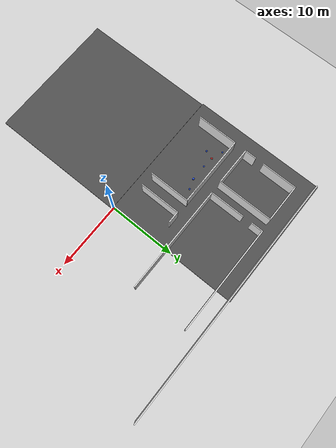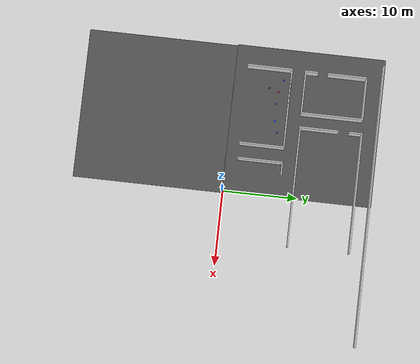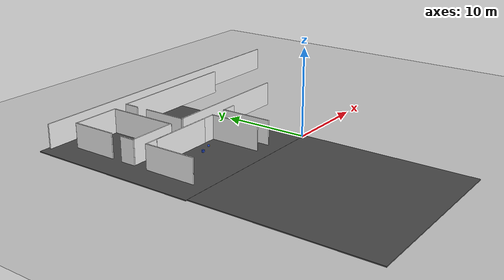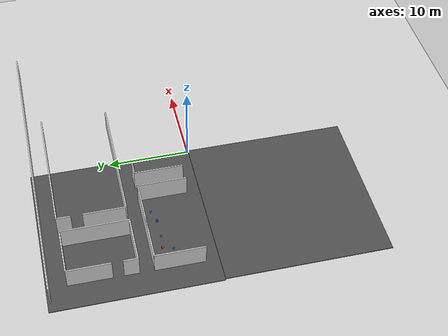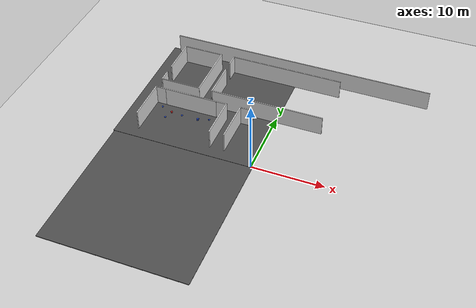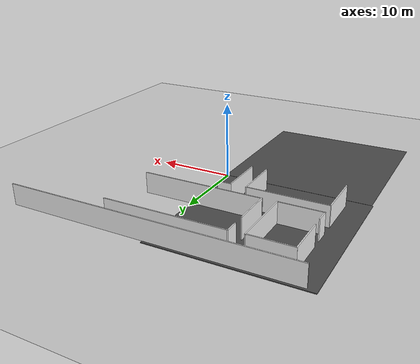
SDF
<sdf version="1.7">
 <world name="default">
  <model name="ground_plane">
   <static>1</static>
   <link name="link">
    <collision name="collision">
     <geometry><plane><normal>0 0 1</normal><size>100 100</size></plane></geometry>
     <surface><friction><ode><mu>100</mu><mu2>50</mu2></ode></friction></surface>
    </collision>
    <visual name="visual">
     <cast_shadows>0</cast_shadows>
     <geometry><plane><normal>0 0 1</normal><size>100 100</size></plane></geometry>
     <material>
      <script><uri>file://media/materials/scripts/gazebo.material</uri><name>Gazebo/Grey</name></script>
     </material>
    </visual>
    <velocity_decay><linear>0</linear><angular>0</angular></velocity_decay>
   </link>
  </model>
  <model name="asphalt_plane">
   <static>1</static>
   <link name="link">
    <collision name="collision"><geometry><box><size>20 20 0.1</size></box></geometry></collision>
    <visual name="visual">
     <cast_shadows>0</cast_shadows>
     <geometry><box><size>20 20 0.1</size></box></geometry>
     <material>
      <script>
       <uri>model://asphalt_plane/materials/scripts</uri>
       <uri>model://asphalt_plane/materials/textures</uri>
       <name>vrc/asphalt</name>
      </script>
     </material>
    </visual>
   </link>
   <pose>-9.73878 -10.1135 0 0 -0 0</pose>
  </model>
  <model name="asphalt_plane_0">
   <static>1</static>
   <link name="link">
    <collision name="collision"><geometry><box><size>20 20 0.1</size></box></geometry></collision>
    <visual name="visual">
     <cast_shadows>0</cast_shadows>
     <geometry><box><size>20 20 0.1</size></box></geometry>
     <material>
      <script>
       <uri>model://asphalt_plane/materials/scripts</uri>
       <uri>model://asphalt_plane/materials/textures</uri>
       <name>vrc/asphalt</name>
      </script>
     </material>
    </visual>
   </link>
   <pose>-9.90113 9.90141 0 0 -0 0</pose>
  </model>
  <model name="white_wall_outside">
   <link name="link">
    <inertial>
     <mass>1</mass>
     <inertia>
      <ixx>0.166667</ixx>
      <ixy>0</ixy>
      <ixz>0</ixz>
      <iyy>0.166667</iyy>
      <iyz>0</iyz>
      <izz>0.166667</izz>
     </inertia>
    </inertial>
    <visual name="visual">
     <geometry><box><size>37.6355 0.139088 2.78993</size></box></geometry>
     <material>
      <script><name>Gazebo/White</name><uri>file://media/materials/scripts/gazebo.material</uri></script>
      <shader type="vertex"><normal_map>__default__</normal_map></shader>
      <ambient>1 1 1 1</ambient>
      <diffuse>1 1 1 1</diffuse>
      <specular>0 0 0 1</specular>
      <emissive>0 0 0 1</emissive>
     </material>
    </visual>
    <collision name="collision">
     <geometry><box><size>37.6355 0.139088 2.78993</size></box></geometry>
     <surface>
      <friction>
       <ode><mu>1</mu><mu2>1</mu2><fdir1>0 0 0</fdir1><slip1>0</slip1><slip2>0</slip2></ode>
       <torsional>
        <coefficient>1</coefficient>
        <patch_radius>0</patch_radius>
        <surface_radius>0</surface_radius>
        <use_patch_radius>1</use_patch_radius>
        <ode><slip>0</slip></ode>
       </torsional>
      </friction>
      <bounce><restitution_coefficient>0</restitution_coefficient><threshold>1e+06</threshold></bounce>
      <contact>
       <collide_without_contact>0</collide_without_contact>
       <collide_without_contact_bitmask>1</collide_without_contact_bitmask>
       <collide_bitmask>1</collide_bitmask>
       <ode>
        <soft_cfm>0</soft_cfm>
        <soft_erp>0.2</soft_erp>
        <kp>1e+13</kp>
        <kd>1</kd>
        <max_vel>0.01</max_vel>
        <min_depth>0</min_depth>
       </ode>
       <bullet>
        <split_impulse>1</split_impulse>
        <split_impulse_penetration_threshold>-0.01</split_impulse_penetration_threshold>
        <soft_cfm>0</soft_cfm>
        <soft_erp>0.2</soft_erp>
        <kp>1e+13</kp>
        <kd>1</kd>
       </bullet>
      </contact>
     </surface>
    </collision>
   </link>
   <static>1</static>
   <pose>0.019671 19.5408 1.44001 -1e-06 4e-06 -1.6e-05</pose>
  </model>
  <model name="white_wall6_clone_clone">
   <link name="link">
    <inertial>
     <mass>1</mass>
     <inertia>
      <ixx>0.166667</ixx>
      <ixy>0</ixy>
      <ixz>0</ixz>
      <iyy>0.166667</iyy>
      <iyz>0</iyz>
      <izz>0.166667</izz>
     </inertia>
    </inertial>
    <visual name="visual">
     <geometry><box><size>6.01508 0.139088 2.78993</size></box></geometry>
     <material>
      <script><name>Gazebo/White</name><uri>file://media/materials/scripts/gazebo.material</uri></script>
      <shader type="vertex"><normal_map>__default__</normal_map></shader>
      <ambient>1 1 1 1</ambient>
      <diffuse>1 1 1 1</diffuse>
      <specular>0 0 0 1</specular>
      <emissive>0 0 0 1</emissive>
     </material>
    </visual>
    <collision name="collision">
     <geometry><box><size>6.01508 0.139088 2.78993</size></box></geometry>
     <surface>
      <friction>
       <ode><mu>1</mu><mu2>1</mu2><fdir1>0 0 0</fdir1><slip1>0</slip1><slip2>0</slip2></ode>
       <torsional>
        <coefficient>1</coefficient>
        <patch_radius>0</patch_radius>
        <surface_radius>0</surface_radius>
        <use_patch_radius>1</use_patch_radius>
        <ode><slip>0</slip></ode>
       </torsional>
      </friction>
      <bounce><restitution_coefficient>0</restitution_coefficient><threshold>1e+06</threshold></bounce>
      <contact>
       <collide_without_contact>0</collide_without_contact>
       <collide_without_contact_bitmask>1</collide_without_contact_bitmask>
       <collide_bitmask>1</collide_bitmask>
       <ode>
        <soft_cfm>0</soft_cfm>
        <soft_erp>0.2</soft_erp>
        <kp>1e+13</kp>
        <kd>1</kd>
        <max_vel>0.01</max_vel>
        <min_depth>0</min_depth>
       </ode>
       <bullet>
        <split_impulse>1</split_impulse>
        <split_impulse_penetration_threshold>-0.01</split_impulse_penetration_threshold>
        <soft_cfm>0</soft_cfm>
        <soft_erp>0.2</soft_erp>
        <kp>1e+13</kp>
        <kd>1</kd>
       </bullet>
      </contact>
     </surface>
    </collision>
   </link>
   <static>1</static>
   <pose>-6.41389 4.52987 1.43998 4e-06 1e-06 1.56978</pose>
  </model>
  <model name="white_wall6_clone_clone_clone">
   <link name="link">
    <inertial>
     <mass>1</mass>
     <inertia>
      <ixx>0.166667</ixx>
      <ixy>0</ixy>
      <ixz>0</ixz>
      <iyy>0.166667</iyy>
      <iyz>0</iyz>
      <izz>0.166667</izz>
     </inertia>
    </inertial>
    <visual name="visual">
     <geometry><box><size>6.01508 0.139088 2.78993</size></box></geometry>
     <material>
      <script><name>Gazebo/White</name><uri>file://media/materials/scripts/gazebo.material</uri></script>
      <shader type="vertex"><normal_map>__default__</normal_map></shader>
      <ambient>1 1 1 1</ambient>
      <diffuse>1 1 1 1</diffuse>
      <specular>0 0 0 1</specular>
      <emissive>0 0 0 1</emissive>
     </material>
    </visual>
    <collision name="collision">
     <geometry><box><size>6.01508 0.139088 2.78993</size></box></geometry>
     <surface>
      <friction>
       <ode><mu>1</mu><mu2>1</mu2><fdir1>0 0 0</fdir1><slip1>0</slip1><slip2>0</slip2></ode>
       <torsional>
        <coefficient>1</coefficient>
        <patch_radius>0</patch_radius>
        <surface_radius>0</surface_radius>
        <use_patch_radius>1</use_patch_radius>
        <ode><slip>0</slip></ode>
       </torsional>
      </friction>
      <bounce><restitution_coefficient>0</restitution_coefficient><threshold>1e+06</threshold></bounce>
      <contact>
       <collide_without_contact>0</collide_without_contact>
       <collide_without_contact_bitmask>1</collide_without_contact_bitmask>
       <collide_bitmask>1</collide_bitmask>
       <ode>
        <soft_cfm>0</soft_cfm>
        <soft_erp>0.2</soft_erp>
        <kp>1e+13</kp>
        <kd>1</kd>
        <max_vel>0.01</max_vel>
        <min_depth>0</min_depth>
       </ode>
       <bullet>
        <split_impulse>1</split_impulse>
        <split_impulse_penetration_threshold>-0.01</split_impulse_penetration_threshold>
        <soft_cfm>0</soft_cfm>
        <soft_erp>0.2</soft_erp>
        <kp>1e+13</kp>
        <kd>1</kd>
       </bullet>
      </contact>
     </surface>
    </collision>
   </link>
   <static>1</static>
   <pose>-16.8721 4.5076 1.43998 4e-06 1e-06 1.56978</pose>
  </model>
  <model name="white_wall17">
   <link name="link">
    <inertial>
     <mass>1</mass>
     <inertia>
      <ixx>0.166667</ixx>
      <ixy>0</ixy>
      <ixz>0</ixz>
      <iyy>0.166667</iyy>
      <iyz>0</iyz>
      <izz>0.166667</izz>
     </inertia>
    </inertial>
    <visual name="visual">
     <geometry><box><size>10.4348 0.139088 2.78993</size></box></geometry>
     <material>
      <script><name>Gazebo/White</name><uri>file://media/materials/scripts/gazebo.material</uri></script>
      <shader type="vertex"><normal_map>__default__</normal_map></shader>
      <ambient>1 1 1 1</ambient>
      <diffuse>1 1 1 1</diffuse>
      <specular>0 0 0 1</specular>
      <emissive>0 0 0 1</emissive>
     </material>
    </visual>
    <collision name="collision">
     <geometry><box><size>10.4348 0.139088 2.78993</size></box></geometry>
     <surface>
      <friction>
       <ode><mu>1</mu><mu2>1</mu2><fdir1>0 0 0</fdir1><slip1>0</slip1><slip2>0</slip2></ode>
       <torsional>
        <coefficient>1</coefficient>
        <patch_radius>0</patch_radius>
        <surface_radius>0</surface_radius>
        <use_patch_radius>1</use_patch_radius>
        <ode><slip>0</slip></ode>
       </torsional>
      </friction>
      <bounce><restitution_coefficient>0</restitution_coefficient><threshold>1e+06</threshold></bounce>
      <contact>
       <collide_without_contact>0</collide_without_contact>
       <collide_without_contact_bitmask>1</collide_without_contact_bitmask>
       <collide_bitmask>1</collide_bitmask>
       <ode>
        <soft_cfm>0</soft_cfm>
        <soft_erp>0.2</soft_erp>
        <kp>1e+13</kp>
        <kd>1</kd>
        <max_vel>0.01</max_vel>
        <min_depth>0</min_depth>
       </ode>
       <bullet>
        <split_impulse>1</split_impulse>
        <split_impulse_penetration_threshold>-0.01</split_impulse_penetration_threshold>
        <soft_cfm>0</soft_cfm>
        <soft_erp>0.2</soft_erp>
        <kp>1e+13</kp>
        <kd>1</kd>
       </bullet>
      </contact>
     </surface>
    </collision>
   </link>
   <static>1</static>
   <pose>-11.6537 7.44962 1.43996 -1e-06 4e-06 -1.6e-05</pose>
  </model>
  <model name="white_wall1_clone_0_clone">
   <link name="link">
    <inertial>
     <mass>1</mass>
     <inertia>
      <ixx>0.166667</ixx>
      <ixy>0</ixy>
      <ixz>0</ixz>
      <iyy>0.166667</iyy>
      <iyz>0</iyz>
      <izz>0.166667</izz>
     </inertia>
    </inertial>
    <visual name="visual">
     <geometry><box><size>7.51602 0.139088 2.78993</size></box></geometry>
     <material>
      <script><name>Gazebo/White</name><uri>file://media/materials/scripts/gazebo.material</uri></script>
      <shader type="vertex"><normal_map>__default__</normal_map></shader>
      <ambient>1 1 1 1</ambient>
      <diffuse>1 1 1 1</diffuse>
      <specular>0 0 0 1</specular>
      <emissive>0 0 0 1</emissive>
     </material>
    </visual>
    <collision name="collision">
     <geometry><box><size>7.51602 0.139088 2.78993</size></box></geometry>
     <surface>
      <friction>
       <ode><mu>1</mu><mu2>1</mu2><fdir1>0 0 0</fdir1><slip1>0</slip1><slip2>0</slip2></ode>
       <torsional>
        <coefficient>1</coefficient>
        <patch_radius>0</patch_radius>
        <surface_radius>0</surface_radius>
        <use_patch_radius>1</use_patch_radius>
        <ode><slip>0</slip></ode>
       </torsional>
      </friction>
      <bounce><restitution_coefficient>0</restitution_coefficient><threshold>1e+06</threshold></bounce>
      <contact>
       <collide_without_contact>0</collide_without_contact>
       <collide_without_contact_bitmask>1</collide_without_contact_bitmask>
       <collide_bitmask>1</collide_bitmask>
       <ode>
        <soft_cfm>0</soft_cfm>
        <soft_erp>0.2</soft_erp>
        <kp>1e+13</kp>
        <kd>1</kd>
        <max_vel>0.01</max_vel>
        <min_depth>0</min_depth>
       </ode>
       <bullet>
        <split_impulse>1</split_impulse>
        <split_impulse_penetration_threshold>-0.01</split_impulse_penetration_threshold>
        <soft_cfm>0</soft_cfm>
        <soft_erp>0.2</soft_erp>
        <kp>1e+13</kp>
        <kd>1</kd>
       </bullet>
      </contact>
     </surface>
    </collision>
   </link>
   <static>1</static>
   <pose>-11.6537 7.4355 1.43996 -1e-06 4e-06 -1.6e-05</pose>
  </model>
  <model name="white_wall3_clone_clone_2">
   <link name="link">
    <inertial>
     <mass>1</mass>
     <inertia>
      <ixx>0.166667</ixx>
      <ixy>0</ixy>
      <ixz>0</ixz>
      <iyy>0.166667</iyy>
      <iyz>0</iyz>
      <izz>0.166667</izz>
     </inertia>
    </inertial>
    <visual name="visual">
     <geometry><box><size>1.77743 0.139088 2.78993</size></box></geometry>
     <material>
      <script><name>Gazebo/White</name><uri>file://media/materials/scripts/gazebo.material</uri></script>
      <shader type="vertex"><normal_map>__default__</normal_map></shader>
      <ambient>1 1 1 1</ambient>
      <diffuse>1 1 1 1</diffuse>
      <specular>0 0 0 1</specular>
      <emissive>0 0 0 1</emissive>
     </material>
    </visual>
    <collision name="collision">
     <geometry><box><size>1.77743 0.139088 2.78993</size></box></geometry>
     <surface>
      <friction>
       <ode><mu>1</mu><mu2>1</mu2><fdir1>0 0 0</fdir1><slip1>0</slip1><slip2>0</slip2></ode>
       <torsional>
        <coefficient>1</coefficient>
        <patch_radius>0</patch_radius>
        <surface_radius>0</surface_radius>
        <use_patch_radius>1</use_patch_radius>
        <ode><slip>0</slip></ode>
       </torsional>
      </friction>
      <bounce><restitution_coefficient>0</restitution_coefficient><threshold>1e+06</threshold></bounce>
      <contact>
       <collide_without_contact>0</collide_without_contact>
       <collide_without_contact_bitmask>1</collide_without_contact_bitmask>
       <collide_bitmask>1</collide_bitmask>
       <ode>
        <soft_cfm>0</soft_cfm>
        <soft_erp>0.2</soft_erp>
        <kp>1e+13</kp>
        <kd>1</kd>
        <max_vel>0.01</max_vel>
        <min_depth>0</min_depth>
       </ode>
       <bullet>
        <split_impulse>1</split_impulse>
        <split_impulse_penetration_threshold>-0.01</split_impulse_penetration_threshold>
        <soft_cfm>0</soft_cfm>
        <soft_erp>0.2</soft_erp>
        <kp>1e+13</kp>
        <kd>1</kd>
       </bullet>
      </contact>
     </surface>
    </collision>
   </link>
   <static>1</static>
   <pose>-16.8184 10.0855 1.43995 4e-06 1e-06 1.56402</pose>
  </model>
  <model name="white_wall15_clone">
   <link name="link">
    <inertial>
     <mass>1</mass>
     <inertia>
      <ixx>0.166667</ixx>
      <ixy>0</ixy>
      <ixz>0</ixz>
      <iyy>0.166667</iyy>
      <iyz>0</iyz>
      <izz>0.166667</izz>
     </inertia>
    </inertial>
    <visual name="visual">
     <geometry><box><size>5.7215 0.139088 2.78993</size></box></geometry>
     <material>
      <script><name>Gazebo/White</name><uri>file://media/materials/scripts/gazebo.material</uri></script>
      <shader type="vertex"><normal_map>__default__</normal_map></shader>
      <ambient>1 1 1 1</ambient>
      <diffuse>1 1 1 1</diffuse>
      <specular>0 0 0 1</specular>
      <emissive>0 0 0 1</emissive>
     </material>
    </visual>
    <collision name="collision">
     <geometry><box><size>5.7215 0.139088 2.78993</size></box></geometry>
     <surface>
      <friction>
       <ode><mu>1</mu><mu2>1</mu2><fdir1>0 0 0</fdir1><slip1>0</slip1><slip2>0</slip2></ode>
       <torsional>
        <coefficient>1</coefficient>
        <patch_radius>0</patch_radius>
        <surface_radius>0</surface_radius>
        <use_patch_radius>1</use_patch_radius>
        <ode><slip>0</slip></ode>
       </torsional>
      </friction>
      <bounce><restitution_coefficient>0</restitution_coefficient><threshold>1e+06</threshold></bounce>
      <contact>
       <collide_without_contact>0</collide_without_contact>
       <collide_without_contact_bitmask>1</collide_without_contact_bitmask>
       <collide_bitmask>1</collide_bitmask>
       <ode>
        <soft_cfm>0</soft_cfm>
        <soft_erp>0.2</soft_erp>
        <kp>1e+13</kp>
        <kd>1</kd>
        <max_vel>0.01</max_vel>
        <min_depth>0</min_depth>
       </ode>
       <bullet>
        <split_impulse>1</split_impulse>
        <split_impulse_penetration_threshold>-0.01</split_impulse_penetration_threshold>
        <soft_cfm>0</soft_cfm>
        <soft_erp>0.2</soft_erp>
        <kp>1e+13</kp>
        <kd>1</kd>
       </bullet>
      </contact>
     </surface>
    </collision>
   </link>
   <static>1</static>
   <pose>-14.0239 9.27471 1.43994 -1e-06 4e-06 -0.000759</pose>
  </model>
  <model name="white_wall18">
   <link name="link">
    <inertial>
     <mass>1</mass>
     <inertia>
      <ixx>0.166667</ixx>
      <ixy>0</ixy>
      <ixz>0</ixz>
      <iyy>0.166667</iyy>
      <iyz>0</iyz>
      <izz>0.166667</izz>
     </inertia>
    </inertial>
    <visual name="visual">
     <geometry><box><size>8.26846 0.139088 2.78993</size></box></geometry>
     <material>
      <script><name>Gazebo/White</name><uri>file://media/materials/scripts/gazebo.material</uri></script>
      <shader type="vertex"><normal_map>__default__</normal_map></shader>
      <ambient>1 1 1 1</ambient>
      <diffuse>1 1 1 1</diffuse>
      <specular>0 0 0 1</specular>
      <emissive>0 0 0 1</emissive>
     </material>
    </visual>
    <collision name="collision">
     <geometry><box><size>8.26846 0.139088 2.78993</size></box></geometry>
     <surface>
      <friction>
       <ode><mu>1</mu><mu2>1</mu2><fdir1>0 0 0</fdir1><slip1>0</slip1><slip2>0</slip2></ode>
       <torsional>
        <coefficient>1</coefficient>
        <patch_radius>0</patch_radius>
        <surface_radius>0</surface_radius>
        <use_patch_radius>1</use_patch_radius>
        <ode><slip>0</slip></ode>
       </torsional>
      </friction>
      <bounce><restitution_coefficient>0</restitution_coefficient><threshold>1e+06</threshold></bounce>
      <contact>
       <collide_without_contact>0</collide_without_contact>
       <collide_without_contact_bitmask>1</collide_without_contact_bitmask>
       <collide_bitmask>1</collide_bitmask>
       <ode>
        <soft_cfm>0</soft_cfm>
        <soft_erp>0.2</soft_erp>
        <kp>1e+13</kp>
        <kd>1</kd>
        <max_vel>0.01</max_vel>
        <min_depth>0</min_depth>
       </ode>
       <bullet>
        <split_impulse>1</split_impulse>
        <split_impulse_penetration_threshold>-0.01</split_impulse_penetration_threshold>
        <soft_cfm>0</soft_cfm>
        <soft_erp>0.2</soft_erp>
        <kp>1e+13</kp>
        <kd>1</kd>
       </bullet>
      </contact>
     </surface>
    </collision>
   </link>
   <static>1</static>
   <pose>-11.215 13.3404 1.43998 4e-06 1e-06 1.56978</pose>
  </model>
  <model name="white_wall15_clone_clone">
   <link name="link">
    <inertial>
     <mass>1</mass>
     <inertia>
      <ixx>0.166667</ixx>
      <ixy>0</ixy>
      <ixz>0</ixz>
      <iyy>0.166667</iyy>
      <iyz>0</iyz>
      <izz>0.166667</izz>
     </inertia>
    </inertial>
    <visual name="visual">
     <geometry><box><size>5.7215 0.139088 2.78993</size></box></geometry>
     <material>
      <script><name>Gazebo/White</name><uri>file://media/materials/scripts/gazebo.material</uri></script>
      <shader type="vertex"><normal_map>__default__</normal_map></shader>
      <ambient>1 1 1 1</ambient>
      <diffuse>1 1 1 1</diffuse>
      <specular>0 0 0 1</specular>
      <emissive>0 0 0 1</emissive>
     </material>
    </visual>
    <collision name="collision">
     <geometry><box><size>5.7215 0.139088 2.78993</size></box></geometry>
     <surface>
      <friction>
       <ode><mu>1</mu><mu2>1</mu2><fdir1>0 0 0</fdir1><slip1>0</slip1><slip2>0</slip2></ode>
       <torsional>
        <coefficient>1</coefficient>
        <patch_radius>0</patch_radius>
        <surface_radius>0</surface_radius>
        <use_patch_radius>1</use_patch_radius>
        <ode><slip>0</slip></ode>
       </torsional>
      </friction>
      <bounce><restitution_coefficient>0</restitution_coefficient><threshold>1e+06</threshold></bounce>
      <contact>
       <collide_without_contact>0</collide_without_contact>
       <collide_without_contact_bitmask>1</collide_without_contact_bitmask>
       <collide_bitmask>1</collide_bitmask>
       <ode>
        <soft_cfm>0</soft_cfm>
        <soft_erp>0.2</soft_erp>
        <kp>1e+13</kp>
        <kd>1</kd>
        <max_vel>0.01</max_vel>
        <min_depth>0</min_depth>
       </ode>
       <bullet>
        <split_impulse>1</split_impulse>
        <split_impulse_penetration_threshold>-0.01</split_impulse_penetration_threshold>
        <soft_cfm>0</soft_cfm>
        <soft_erp>0.2</soft_erp>
        <kp>1e+13</kp>
        <kd>1</kd>
       </bullet>
      </contact>
     </surface>
    </collision>
   </link>
   <static>1</static>
   <pose>-14.0062 17.4045 1.43994 -1e-06 4e-06 -0.000759</pose>
  </model>
  <model name="white_wall19">
   <link name="link">
    <inertial>
     <mass>1</mass>
     <inertia>
      <ixx>0.166667</ixx>
      <ixy>0</ixy>
      <ixz>0</ixz>
      <iyy>0.166667</iyy>
      <iyz>0</iyz>
      <izz>0.166667</izz>
     </inertia>
    </inertial>
    <visual name="visual">
     <geometry><box><size>5.22248 0.139088 2.78993</size></box></geometry>
     <material>
      <script><name>Gazebo/White</name><uri>file://media/materials/scripts/gazebo.material</uri></script>
      <shader type="vertex"><normal_map>__default__</normal_map></shader>
      <ambient>1 1 1 1</ambient>
      <diffuse>1 1 1 1</diffuse>
      <specular>0 0 0 1</specular>
      <emissive>0 0 0 1</emissive>
     </material>
    </visual>
    <collision name="collision">
     <geometry><box><size>5.22248 0.139088 2.78993</size></box></geometry>
     <surface>
      <friction>
       <ode><mu>1</mu><mu2>1</mu2><fdir1>0 0 0</fdir1><slip1>0</slip1><slip2>0</slip2></ode>
       <torsional>
        <coefficient>1</coefficient>
        <patch_radius>0</patch_radius>
        <surface_radius>0</surface_radius>
        <use_patch_radius>1</use_patch_radius>
        <ode><slip>0</slip></ode>
       </torsional>
      </friction>
      <bounce><restitution_coefficient>0</restitution_coefficient><threshold>1e+06</threshold></bounce>
      <contact>
       <collide_without_contact>0</collide_without_contact>
       <collide_without_contact_bitmask>1</collide_without_contact_bitmask>
       <collide_bitmask>1</collide_bitmask>
       <ode>
        <soft_cfm>0</soft_cfm>
        <soft_erp>0.2</soft_erp>
        <kp>1e+13</kp>
        <kd>1</kd>
        <max_vel>0.01</max_vel>
        <min_depth>0</min_depth>
       </ode>
       <bullet>
        <split_impulse>1</split_impulse>
        <split_impulse_penetration_threshold>-0.01</split_impulse_penetration_threshold>
        <soft_cfm>0</soft_cfm>
        <soft_erp>0.2</soft_erp>
        <kp>1e+13</kp>
        <kd>1</kd>
       </bullet>
      </contact>
     </surface>
    </collision>
   </link>
   <static>1</static>
   <pose>-16.8039 14.8534 1.43998 4e-06 1e-06 1.56978</pose>
  </model>
  <model name="white_wall19_clone">
   <link name="link">
    <inertial>
     <mass>1</mass>
     <inertia>
      <ixx>0.166667</ixx>
      <ixy>0</ixy>
      <ixz>0</ixz>
      <iyy>0.166667</iyy>
      <iyz>0</iyz>
      <izz>0.166667</izz>
     </inertia>
    </inertial>
    <visual name="visual">
     <geometry><box><size>5.22248 0.139088 2.78993</size></box></geometry>
     <material>
      <script><name>Gazebo/White</name><uri>file://media/materials/scripts/gazebo.material</uri></script>
      <shader type="vertex"><normal_map>__default__</normal_map></shader>
      <ambient>1 1 1 1</ambient>
      <diffuse>1 1 1 1</diffuse>
      <specular>0 0 0 1</specular>
      <emissive>0 0 0 1</emissive>
     </material>
    </visual>
    <collision name="collision">
     <geometry><box><size>5.22248 0.139088 2.78993</size></box></geometry>
     <surface>
      <friction>
       <ode><mu>1</mu><mu2>1</mu2><fdir1>0 0 0</fdir1><slip1>0</slip1><slip2>0</slip2></ode>
       <torsional>
        <coefficient>1</coefficient>
        <patch_radius>0</patch_radius>
        <surface_radius>0</surface_radius>
        <use_patch_radius>1</use_patch_radius>
        <ode><slip>0</slip></ode>
       </torsional>
      </friction>
      <bounce><restitution_coefficient>0</restitution_coefficient><threshold>1e+06</threshold></bounce>
      <contact>
       <collide_without_contact>0</collide_without_contact>
       <collide_without_contact_bitmask>1</collide_without_contact_bitmask>
       <collide_bitmask>1</collide_bitmask>
       <ode>
        <soft_cfm>0</soft_cfm>
        <soft_erp>0.2</soft_erp>
        <kp>1e+13</kp>
        <kd>1</kd>
        <max_vel>0.01</max_vel>
        <min_depth>0</min_depth>
       </ode>
       <bullet>
        <split_impulse>1</split_impulse>
        <split_impulse_penetration_threshold>-0.01</split_impulse_penetration_threshold>
        <soft_cfm>0</soft_cfm>
        <soft_erp>0.2</soft_erp>
        <kp>1e+13</kp>
        <kd>1</kd>
       </bullet>
      </contact>
     </surface>
    </collision>
   </link>
   <static>1</static>
   <pose>-9.314 11.857 1.43998 4e-06 1e-06 1.56978</pose>
  </model>
  <model name="white_wall3_clone_clone_2_clone">
   <link name="link">
    <inertial>
     <mass>1</mass>
     <inertia>
      <ixx>0.166667</ixx>
      <ixy>0</ixy>
      <ixz>0</ixz>
      <iyy>0.166667</iyy>
      <iyz>0</iyz>
      <izz>0.166667</izz>
     </inertia>
    </inertial>
    <visual name="visual">
     <geometry><box><size>1.77743 0.139088 2.78993</size></box></geometry>
     <material>
      <script><name>Gazebo/White</name><uri>file://media/materials/scripts/gazebo.material</uri></script>
      <shader type="vertex"><normal_map>__default__</normal_map></shader>
      <ambient>1 1 1 1</ambient>
      <diffuse>1 1 1 1</diffuse>
      <specular>0 0 0 1</specular>
      <emissive>0 0 0 1</emissive>
     </material>
    </visual>
    <collision name="collision">
     <geometry><box><size>1.77743 0.139088 2.78993</size></box></geometry>
     <surface>
      <friction>
       <ode><mu>1</mu><mu2>1</mu2><fdir1>0 0 0</fdir1><slip1>0</slip1><slip2>0</slip2></ode>
       <torsional>
        <coefficient>1</coefficient>
        <patch_radius>0</patch_radius>
        <surface_radius>0</surface_radius>
        <use_patch_radius>1</use_patch_radius>
        <ode><slip>0</slip></ode>
       </torsional>
      </friction>
      <bounce><restitution_coefficient>0</restitution_coefficient><threshold>1e+06</threshold></bounce>
      <contact>
       <collide_without_contact>0</collide_without_contact>
       <collide_without_contact_bitmask>1</collide_without_contact_bitmask>
       <collide_bitmask>1</collide_bitmask>
       <ode>
        <soft_cfm>0</soft_cfm>
        <soft_erp>0.2</soft_erp>
        <kp>1e+13</kp>
        <kd>1</kd>
        <max_vel>0.01</max_vel>
        <min_depth>0</min_depth>
       </ode>
       <bullet>
        <split_impulse>1</split_impulse>
        <split_impulse_penetration_threshold>-0.01</split_impulse_penetration_threshold>
        <soft_cfm>0</soft_cfm>
        <soft_erp>0.2</soft_erp>
        <kp>1e+13</kp>
        <kd>1</kd>
       </bullet>
      </contact>
     </surface>
    </collision>
   </link>
   <static>1</static>
   <pose>-9.30073 16.7187 1.43995 4e-06 1e-06 1.56402</pose>
  </model>
  <model name="white_wall17_clone_clone">
   <link name="link">
    <inertial>
     <mass>1</mass>
     <inertia>
      <ixx>0.166667</ixx>
      <ixy>0</ixy>
      <ixz>0</ixz>
      <iyy>0.166667</iyy>
      <iyz>0</iyz>
      <izz>0.166667</izz>
     </inertia>
    </inertial>
    <visual name="visual">
     <geometry><box><size>16.0161 0.139088 2.78993</size></box></geometry>
     <material>
      <script><name>Gazebo/White</name><uri>file://media/materials/scripts/gazebo.material</uri></script>
      <shader type="vertex"><normal_map>__default__</normal_map></shader>
      <ambient>1 1 1 1</ambient>
      <diffuse>1 1 1 1</diffuse>
      <specular>0 0 0 1</specular>
      <emissive>0 0 0 1</emissive>
     </material>
    </visual>
    <collision name="collision">
     <geometry><box><size>16.0161 0.139088 2.78993</size></box></geometry>
     <surface>
      <friction>
       <ode><mu>1</mu><mu2>1</mu2><fdir1>0 0 0</fdir1><slip1>0</slip1><slip2>0</slip2></ode>
       <torsional>
        <coefficient>1</coefficient>
        <patch_radius>0</patch_radius>
        <surface_radius>0</surface_radius>
        <use_patch_radius>1</use_patch_radius>
        <ode><slip>0</slip></ode>
       </torsional>
      </friction>
      <bounce><restitution_coefficient>0</restitution_coefficient><threshold>1e+06</threshold></bounce>
      <contact>
       <collide_without_contact>0</collide_without_contact>
       <collide_without_contact_bitmask>1</collide_without_contact_bitmask>
       <collide_bitmask>1</collide_bitmask>
       <ode>
        <soft_cfm>0</soft_cfm>
        <soft_erp>0.2</soft_erp>
        <kp>1e+13</kp>
        <kd>1</kd>
        <max_vel>0.01</max_vel>
        <min_depth>0</min_depth>
       </ode>
       <bullet>
        <split_impulse>1</split_impulse>
        <split_impulse_penetration_threshold>-0.01</split_impulse_penetration_threshold>
        <soft_cfm>0</soft_cfm>
        <soft_erp>0.2</soft_erp>
        <kp>1e+13</kp>
        <kd>1</kd>
       </bullet>
      </contact>
     </surface>
    </collision>
   </link>
   <static>1</static>
   <pose>-1.34784 17.535 1.43995 -1e-06 4e-06 -1.6e-05</pose>
  </model>
  <model name="white_wall17_clone_clone_clone">
   <link name="link">
    <inertial>
     <mass>1</mass>
     <inertia>
      <ixx>0.166667</ixx>
      <ixy>0</ixy>
      <ixz>0</ixz>
      <iyy>0.166667</iyy>
      <iyz>0</iyz>
      <izz>0.166667</izz>
     </inertia>
    </inertial>
    <visual name="visual">
     <geometry><box><size>16.0161 0.139088 2.78993</size></box></geometry>
     <material>
      <script><name>Gazebo/White</name><uri>file://media/materials/scripts/gazebo.material</uri></script>
      <shader type="vertex"><normal_map>__default__</normal_map></shader>
      <ambient>1 1 1 1</ambient>
      <diffuse>1 1 1 1</diffuse>
      <specular>0 0 0 1</specular>
      <emissive>0 0 0 1</emissive>
     </material>
    </visual>
    <collision name="collision">
     <geometry><box><size>16.0161 0.139088 2.78993</size></box></geometry>
     <surface>
      <friction>
       <ode><mu>1</mu><mu2>1</mu2><fdir1>0 0 0</fdir1><slip1>0</slip1><slip2>0</slip2></ode>
       <torsional>
        <coefficient>1</coefficient>
        <patch_radius>0</patch_radius>
        <surface_radius>0</surface_radius>
        <use_patch_radius>1</use_patch_radius>
        <ode><slip>0</slip></ode>
       </torsional>
      </friction>
      <bounce><restitution_coefficient>0</restitution_coefficient><threshold>1e+06</threshold></bounce>
      <contact>
       <collide_without_contact>0</collide_without_contact>
       <collide_without_contact_bitmask>1</collide_without_contact_bitmask>
       <collide_bitmask>1</collide_bitmask>
       <ode>
        <soft_cfm>0</soft_cfm>
        <soft_erp>0.2</soft_erp>
        <kp>1e+13</kp>
        <kd>1</kd>
        <max_vel>0.01</max_vel>
        <min_depth>0</min_depth>
       </ode>
       <bullet>
        <split_impulse>1</split_impulse>
        <split_impulse_penetration_threshold>-0.01</split_impulse_penetration_threshold>
        <soft_cfm>0</soft_cfm>
        <soft_erp>0.2</soft_erp>
        <kp>1e+13</kp>
        <kd>1</kd>
       </bullet>
      </contact>
     </surface>
    </collision>
   </link>
   <static>1</static>
   <pose>-1.39522 9.32901 1.43995 -1e-06 4e-06 -1.6e-05</pose>
  </model>
  <model name="white_wall6_clone_clone_clone_0">
   <link name="link">
    <inertial>
     <mass>1</mass>
     <inertia>
      <ixx>0.166667</ixx>
      <ixy>0</ixy>
      <ixz>0</ixz>
      <iyy>0.166667</iyy>
      <iyz>0</iyz>
      <izz>0.166667</izz>
     </inertia>
    </inertial>
    <visual name="visual">
     <geometry><box><size>6.01508 0.139088 2.78993</size></box></geometry>
     <material>
      <script><name>Gazebo/White</name><uri>file://media/materials/scripts/gazebo.material</uri></script>
      <shader type="vertex"><normal_map>__default__</normal_map></shader>
      <ambient>1 1 1 1</ambient>
      <diffuse>1 1 1 1</diffuse>
      <specular>0 0 0 1</specular>
      <emissive>0 0 0 1</emissive>
     </material>
    </visual>
    <collision name="collision">
     <geometry><box><size>6.01508 0.139088 2.78993</size></box></geometry>
     <surface>
      <friction>
       <ode><mu>1</mu><mu2>1</mu2><fdir1>0 0 0</fdir1><slip1>0</slip1><slip2>0</slip2></ode>
       <torsional>
        <coefficient>1</coefficient>
        <patch_radius>0</patch_radius>
        <surface_radius>0</surface_radius>
        <use_patch_radius>1</use_patch_radius>
        <ode><slip>0</slip></ode>
       </torsional>
      </friction>
      <bounce><restitution_coefficient>0</restitution_coefficient><threshold>1e+06</threshold></bounce>
      <contact>
       <collide_without_contact>0</collide_without_contact>
       <collide_without_contact_bitmask>1</collide_without_contact_bitmask>
       <collide_bitmask>1</collide_bitmask>
       <ode>
        <soft_cfm>0</soft_cfm>
        <soft_erp>0.2</soft_erp>
        <kp>1e+13</kp>
        <kd>1</kd>
        <max_vel>0.01</max_vel>
        <min_depth>0</min_depth>
       </ode>
       <bullet>
        <split_impulse>1</split_impulse>
        <split_impulse_penetration_threshold>-0.01</split_impulse_penetration_threshold>
        <soft_cfm>0</soft_cfm>
        <soft_erp>0.2</soft_erp>
        <kp>1e+13</kp>
        <kd>1</kd>
       </bullet>
      </contact>
     </surface>
    </collision>
   </link>
   <static>1</static>
   <pose>-4.38015 4.52985 1.43998 4e-06 1e-06 1.56978</pose>
  </model>
  <model name="white_wall3_clone_clone_0_clone_clone_clone_clone">
   <link name="link">
    <inertial>
     <mass>1</mass>
     <inertia>
      <ixx>0.166667</ixx>
      <ixy>0</ixy>
      <ixz>0</ixz>
      <iyy>0.166667</iyy>
      <iyz>0</iyz>
      <izz>0.166667</izz>
     </inertia>
    </inertial>
    <visual name="visual">
     <geometry><box><size>1.77743 0.139088 2.78993</size></box></geometry>
     <material>
      <script><name>Gazebo/White</name><uri>file://media/materials/scripts/gazebo.material</uri></script>
      <shader type="vertex"><normal_map>__default__</normal_map></shader>
      <ambient>1 1 1 1</ambient>
      <diffuse>1 1 1 1</diffuse>
      <specular>0 0 0 1</specular>
      <emissive>0 0 0 1</emissive>
     </material>
    </visual>
    <collision name="collision">
     <geometry><box><size>1.77743 0.139088 2.78993</size></box></geometry>
     <surface>
      <friction>
       <ode><mu>1</mu><mu2>1</mu2><fdir1>0 0 0</fdir1><slip1>0</slip1><slip2>0</slip2></ode>
       <torsional>
        <coefficient>1</coefficient>
        <patch_radius>0</patch_radius>
        <surface_radius>0</surface_radius>
        <use_patch_radius>1</use_patch_radius>
        <ode><slip>0</slip></ode>
       </torsional>
      </friction>
      <bounce><restitution_coefficient>0</restitution_coefficient><threshold>1e+06</threshold></bounce>
      <contact>
       <collide_without_contact>0</collide_without_contact>
       <collide_without_contact_bitmask>1</collide_without_contact_bitmask>
       <collide_bitmask>1</collide_bitmask>
       <ode>
        <soft_cfm>0</soft_cfm>
        <soft_erp>0.2</soft_erp>
        <kp>1e+13</kp>
        <kd>1</kd>
        <max_vel>0.01</max_vel>
        <min_depth>0</min_depth>
       </ode>
       <bullet>
        <split_impulse>1</split_impulse>
        <split_impulse_penetration_threshold>-0.01</split_impulse_penetration_threshold>
        <soft_cfm>0</soft_cfm>
        <soft_erp>0.2</soft_erp>
        <kp>1e+13</kp>
        <kd>1</kd>
       </bullet>
      </contact>
     </surface>
    </collision>
   </link>
   <static>1</static>
   <pose>-3.54674 7.48169 1.43995 -1e-06 4e-06 0.011343</pose>
  </model>
  <model name="unit_sphere_blue_small">
   <link name="link">
    <inertial>
     <mass>1</mass>
     <inertia><ixx>0.1</ixx><ixy>0</ixy><ixz>0</ixz><iyy>0.1</iyy><iyz>0</iyz><izz>0.1</izz></inertia>
    </inertial>
    <pose>0 0 -0.418168 0 -0 0</pose>
    <visual name="visual">
     <geometry><sphere><radius>0.125</radius></sphere></geometry>
     <material>
      <script><name>Gazebo/Blue</name><uri>file://media/materials/scripts/gazebo.material</uri></script>
      <shader type="vertex"><normal_map>__default__</normal_map></shader>
      <ambient>0 0 1 1</ambient>
      <diffuse>0 0 1 1</diffuse>
      <specular>0.1 0.1 0.1 1</specular>
      <emissive>0 0 0 1</emissive>
     </material>
    </visual>
    <collision name="collision">
     <geometry><sphere><radius>0.125</radius></sphere></geometry>
     <surface>
      <friction>
       <ode><mu>1</mu><mu2>1</mu2><fdir1>0 0 0</fdir1><slip1>0</slip1><slip2>0</slip2></ode>
       <torsional>
        <coefficient>1</coefficient>
        <patch_radius>0</patch_radius>
        <surface_radius>0</surface_radius>
        <use_patch_radius>1</use_patch_radius>
        <ode><slip>0</slip></ode>
       </torsional>
      </friction>
      <bounce><restitution_coefficient>0</restitution_coefficient><threshold>1e+06</threshold></bounce>
      <contact>
       <collide_without_contact>0</collide_without_contact>
       <collide_without_contact_bitmask>1</collide_without_contact_bitmask>
       <collide_bitmask>1</collide_bitmask>
       <ode>
        <soft_cfm>0</soft_cfm>
        <soft_erp>0.2</soft_erp>
        <kp>1e+13</kp>
        <kd>1</kd>
        <max_vel>0.01</max_vel>
        <min_depth>0</min_depth>
       </ode>
       <bullet>
        <split_impulse>1</split_impulse>
        <split_impulse_penetration_threshold>-0.01</split_impulse_penetration_threshold>
        <soft_cfm>0</soft_cfm>
        <soft_erp>0.2</soft_erp>
        <kp>1e+13</kp>
        <kd>1</kd>
       </bullet>
      </contact>
     </surface>
    </collision>
   </link>
   <static>0</static>
   <pose>-14.4366 4.76877 0.593168 0 -0 0</pose>
  </model>
  <model name="unit_sphere_blue_small_clone_0">
   <link name="link">
    <inertial>
     <mass>1</mass>
     <inertia><ixx>0.1</ixx><ixy>0</ixy><ixz>0</ixz><iyy>0.1</iyy><iyz>0</iyz><izz>0.1</izz></inertia>
    </inertial>
    <pose>0 0 -0.418168 0 -0 0</pose>
    <visual name="visual">
     <geometry><sphere><radius>0.125</radius></sphere></geometry>
     <material>
      <script><name>Gazebo/Blue</name><uri>file://media/materials/scripts/gazebo.material</uri></script>
      <shader type="vertex"><normal_map>__default__</normal_map></shader>
      <ambient>0 0 1 1</ambient>
      <diffuse>0 0 1 1</diffuse>
      <specular>0.1 0.1 0.1 1</specular>
      <emissive>0 0 0 1</emissive>
     </material>
    </visual>
    <collision name="collision">
     <geometry><sphere><radius>0.125</radius></sphere></geometry>
     <surface>
      <friction>
       <ode><mu>1</mu><mu2>1</mu2><fdir1>0 0 0</fdir1><slip1>0</slip1><slip2>0</slip2></ode>
       <torsional>
        <coefficient>1</coefficient>
        <patch_radius>0</patch_radius>
        <surface_radius>0</surface_radius>
        <use_patch_radius>1</use_patch_radius>
        <ode><slip>0</slip></ode>
       </torsional>
      </friction>
      <bounce><restitution_coefficient>0</restitution_coefficient><threshold>1e+06</threshold></bounce>
      <contact>
       <collide_without_contact>0</collide_without_contact>
       <collide_without_contact_bitmask>1</collide_without_contact_bitmask>
       <collide_bitmask>1</collide_bitmask>
       <ode>
        <soft_cfm>0</soft_cfm>
        <soft_erp>0.2</soft_erp>
        <kp>1e+13</kp>
        <kd>1</kd>
        <max_vel>0.01</max_vel>
        <min_depth>0</min_depth>
       </ode>
       <bullet>
        <split_impulse>1</split_impulse>
        <split_impulse_penetration_threshold>-0.01</split_impulse_penetration_threshold>
        <soft_cfm>0</soft_cfm>
        <soft_erp>0.2</soft_erp>
        <kp>1e+13</kp>
        <kd>1</kd>
       </bullet>
      </contact>
     </surface>
    </collision>
   </link>
   <static>0</static>
   <pose>-12.4016 5.87791 0.593168 0 -0 0</pose>
  </model>
  <model name="unit_sphere_blue_small_clone_1">
   <link name="link">
    <inertial>
     <mass>1</mass>
     <inertia><ixx>0.1</ixx><ixy>0</ixy><ixz>0</ixz><iyy>0.1</iyy><iyz>0</iyz><izz>0.1</izz></inertia>
    </inertial>
    <pose>0 0 -0.418168 0 -0 0</pose>
    <visual name="visual">
     <geometry><sphere><radius>0.125</radius></sphere></geometry>
     <material>
      <script><name>Gazebo/Blue</name><uri>file://media/materials/scripts/gazebo.material</uri></script>
      <shader type="vertex"><normal_map>__default__</normal_map></shader>
      <ambient>0 0 1 1</ambient>
      <diffuse>0 0 1 1</diffuse>
      <specular>0.1 0.1 0.1 1</specular>
      <emissive>0 0 0 1</emissive>
     </material>
    </visual>
    <collision name="collision">
     <geometry><sphere><radius>0.125</radius></sphere></geometry>
     <surface>
      <friction>
       <ode><mu>1</mu><mu2>1</mu2><fdir1>0 0 0</fdir1><slip1>0</slip1><slip2>0</slip2></ode>
       <torsional>
        <coefficient>1</coefficient>
        <patch_radius>0</patch_radius>
        <surface_radius>0</surface_radius>
        <use_patch_radius>1</use_patch_radius>
        <ode><slip>0</slip></ode>
       </torsional>
      </friction>
      <bounce><restitution_coefficient>0</restitution_coefficient><threshold>1e+06</threshold></bounce>
      <contact>
       <collide_without_contact>0</collide_without_contact>
       <collide_without_contact_bitmask>1</collide_without_contact_bitmask>
       <collide_bitmask>1</collide_bitmask>
       <ode>
        <soft_cfm>0</soft_cfm>
        <soft_erp>0.2</soft_erp>
        <kp>1e+13</kp>
        <kd>1</kd>
        <max_vel>0.01</max_vel>
        <min_depth>0</min_depth>
       </ode>
       <bullet>
        <split_impulse>1</split_impulse>
        <split_impulse_penetration_threshold>-0.01</split_impulse_penetration_threshold>
        <soft_cfm>0</soft_cfm>
        <soft_erp>0.2</soft_erp>
        <kp>1e+13</kp>
        <kd>1</kd>
       </bullet>
      </contact>
     </surface>
    </collision>
   </link>
   <static>0</static>
   <pose>-15.6834 6.59967 0.593168 0 -0 0</pose>
  </model>
  <model name="unit_sphere_blue_small_clone_3">
   <link name="link">
    <inertial>
     <mass>1</mass>
     <inertia><ixx>0.1</ixx><ixy>0</ixy><ixz>0</ixz><iyy>0.1</iyy><iyz>0</iyz><izz>0.1</izz></inertia>
    </inertial>
    <pose>0 0 -0.418168 0 -0 0</pose>
    <visual name="visual">
     <geometry><sphere><radius>0.125</radius></sphere></geometry>
     <material>
      <script><name>Gazebo/Blue</name><uri>file://media/materials/scripts/gazebo.material</uri></script>
      <shader type="vertex"><normal_map>__default__</normal_map></shader>
      <ambient>0 0 1 1</ambient>
      <diffuse>0 0 1 1</diffuse>
      <specular>0.1 0.1 0.1 1</specular>
      <emissive>0 0 0 1</emissive>
     </material>
    </visual>
    <collision name="collision">
     <geometry><sphere><radius>0.125</radius></sphere></geometry>
     <surface>
      <friction>
       <ode><mu>1</mu><mu2>1</mu2><fdir1>0 0 0</fdir1><slip1>0</slip1><slip2>0</slip2></ode>
       <torsional>
        <coefficient>1</coefficient>
        <patch_radius>0</patch_radius>
        <surface_radius>0</surface_radius>
        <use_patch_radius>1</use_patch_radius>
        <ode><slip>0</slip></ode>
       </torsional>
      </friction>
      <bounce><restitution_coefficient>0</restitution_coefficient><threshold>1e+06</threshold></bounce>
      <contact>
       <collide_without_contact>0</collide_without_contact>
       <collide_without_contact_bitmask>1</collide_without_contact_bitmask>
       <collide_bitmask>1</collide_bitmask>
       <ode>
        <soft_cfm>0</soft_cfm>
        <soft_erp>0.2</soft_erp>
        <kp>1e+13</kp>
        <kd>1</kd>
        <max_vel>0.01</max_vel>
        <min_depth>0</min_depth>
       </ode>
       <bullet>
        <split_impulse>1</split_impulse>
        <split_impulse_penetration_threshold>-0.01</split_impulse_penetration_threshold>
        <soft_cfm>0</soft_cfm>
        <soft_erp>0.2</soft_erp>
        <kp>1e+13</kp>
        <kd>1</kd>
       </bullet>
      </contact>
     </surface>
    </collision>
   </link>
   <static>0</static>
   <pose>-8.5494 6.37812 0.593168 0 -0 0</pose>
  </model>
  <model name="unit_box_blue_25">
   <link name="link">
    <inertial>
     <mass>1</mass>
     <inertia>
      <ixx>0.166667</ixx>
      <ixy>0</ixy>
      <ixz>0</ixz>
      <iyy>0.166667</iyy>
      <iyz>0</iyz>
      <izz>0.166667</izz>
     </inertia>
    </inertial>
    <pose>0 0 -0.360386 0 -0 0</pose>
    <visual name="visual">
     <geometry><box><size>0.25 0.25 0.25</size></box></geometry>
     <material>
      <script><name>Gazebo/Blue</name><uri>file://media/materials/scripts/gazebo.material</uri></script>
      <shader type="vertex"><normal_map>__default__</normal_map></shader>
      <ambient>0 0 1 1</ambient>
      <diffuse>0 0 1 1</diffuse>
      <specular>0.1 0.1 0.1 1</specular>
      <emissive>0 0 0 1</emissive>
     </material>
    </visual>
    <collision name="collision">
     <geometry><box><size>0.25 0.25 0.25</size></box></geometry>
     <surface>
      <friction>
       <ode><mu>1</mu><mu2>1</mu2><fdir1>0 0 0</fdir1><slip1>0</slip1><slip2>0</slip2></ode>
       <torsional>
        <coefficient>1</coefficient>
        <patch_radius>0</patch_radius>
        <surface_radius>0</surface_radius>
        <use_patch_radius>1</use_patch_radius>
        <ode><slip>0</slip></ode>
       </torsional>
      </friction>
      <bounce><restitution_coefficient>0</restitution_coefficient><threshold>1e+06</threshold></bounce>
      <contact>
       <collide_without_contact>0</collide_without_contact>
       <collide_without_contact_bitmask>1</collide_without_contact_bitmask>
       <collide_bitmask>1</collide_bitmask>
       <ode>
        <soft_cfm>0</soft_cfm>
        <soft_erp>0.2</soft_erp>
        <kp>1e+13</kp>
        <kd>1</kd>
        <max_vel>0.01</max_vel>
        <min_depth>0</min_depth>
       </ode>
       <bullet>
        <split_impulse>1</split_impulse>
        <split_impulse_penetration_threshold>-0.01</split_impulse_penetration_threshold>
        <soft_cfm>0</soft_cfm>
        <soft_erp>0.2</soft_erp>
        <kp>1e+13</kp>
        <kd>1</kd>
       </bullet>
      </contact>
     </surface>
    </collision>
   </link>
   <static>0</static>
   <pose>-10.0528 5.89588 0.535386 0 -0 2.6e-05</pose>
  </model>
  <model name="unit_cylinder_red_25_clone_0">
   <link name="link">
    <inertial>
     <mass>1</mass>
     <inertia><ixx>0.145833</ixx><ixy>0</ixy><ixz>0</ixz><iyy>0.145833</iyy><iyz>0</iyz><izz>0.125</izz></inertia>
    </inertial>
    <pose>-0 -0.372104 -0 0 -0 0</pose>
    <visual name="visual">
     <geometry><cylinder><radius>0.12</radius><length>0.25</length></cylinder></geometry>
     <material>
      <script><name>Gazebo/Red</name><uri>file://media/materials/scripts/gazebo.material</uri></script>
      <shader type="vertex"><normal_map>__default__</normal_map></shader>
      <ambient>1 0 0 1</ambient>
      <diffuse>1 0 0 1</diffuse>
      <specular>0.1 0.1 0.1 1</specular>
      <emissive>0 0 0 1</emissive>
     </material>
    </visual>
    <collision name="collision">
     <geometry><cylinder><radius>0.12</radius><length>0.25</length></cylinder></geometry>
     <surface>
      <friction>
       <ode><mu>1</mu><mu2>1</mu2><fdir1>0 0 0</fdir1><slip1>0</slip1><slip2>0</slip2></ode>
       <torsional>
        <coefficient>1</coefficient>
        <patch_radius>0</patch_radius>
        <surface_radius>0</surface_radius>
        <use_patch_radius>1</use_patch_radius>
        <ode><slip>0</slip></ode>
       </torsional>
      </friction>
      <bounce><restitution_coefficient>0</restitution_coefficient><threshold>1e+06</threshold></bounce>
      <contact>
       <collide_without_contact>0</collide_without_contact>
       <collide_without_contact_bitmask>1</collide_without_contact_bitmask>
       <collide_bitmask>1</collide_bitmask>
       <ode>
        <soft_cfm>0</soft_cfm>
        <soft_erp>0.2</soft_erp>
        <kp>1e+13</kp>
        <kd>1</kd>
        <max_vel>0.01</max_vel>
        <min_depth>0</min_depth>
       </ode>
       <bullet>
        <split_impulse>1</split_impulse>
        <split_impulse_penetration_threshold>-0.01</split_impulse_penetration_threshold>
        <soft_cfm>0</soft_cfm>
        <soft_erp>0.2</soft_erp>
        <kp>1e+13</kp>
        <kd>1</kd>
       </bullet>
      </contact>
     </surface>
    </collision>
   </link>
   <static>0</static>
   <pose>-13.9889 6.0143 0.539544 1.5708 0.11737 0.516879</pose>
  </model>
 </world>
</sdf>
